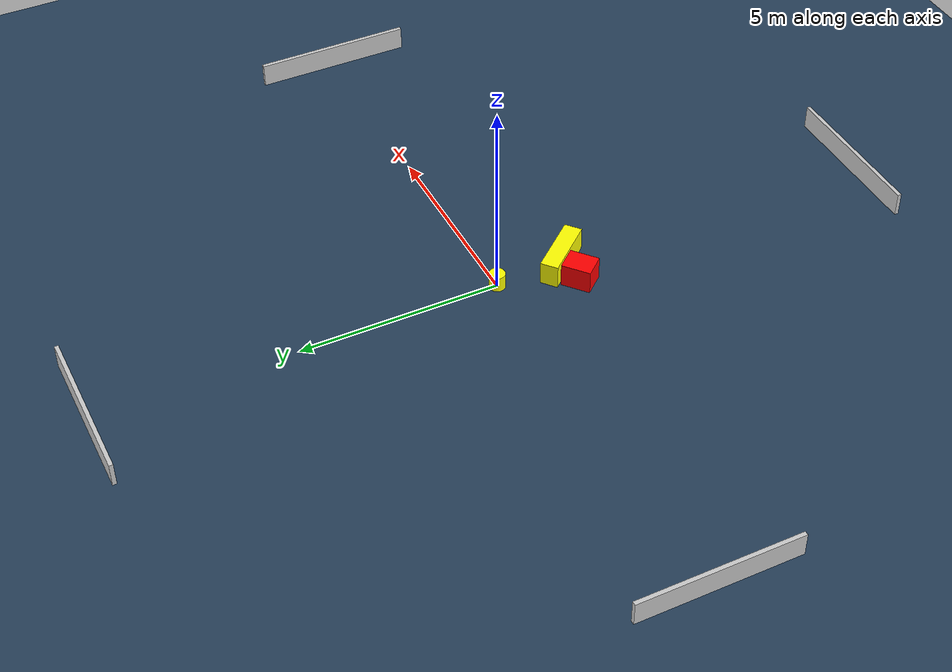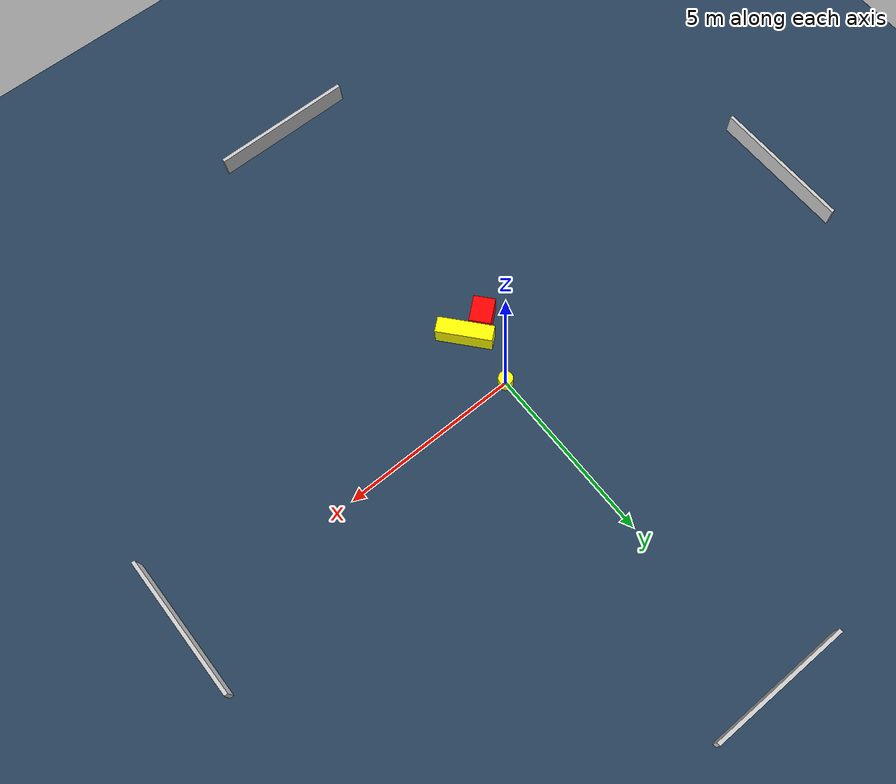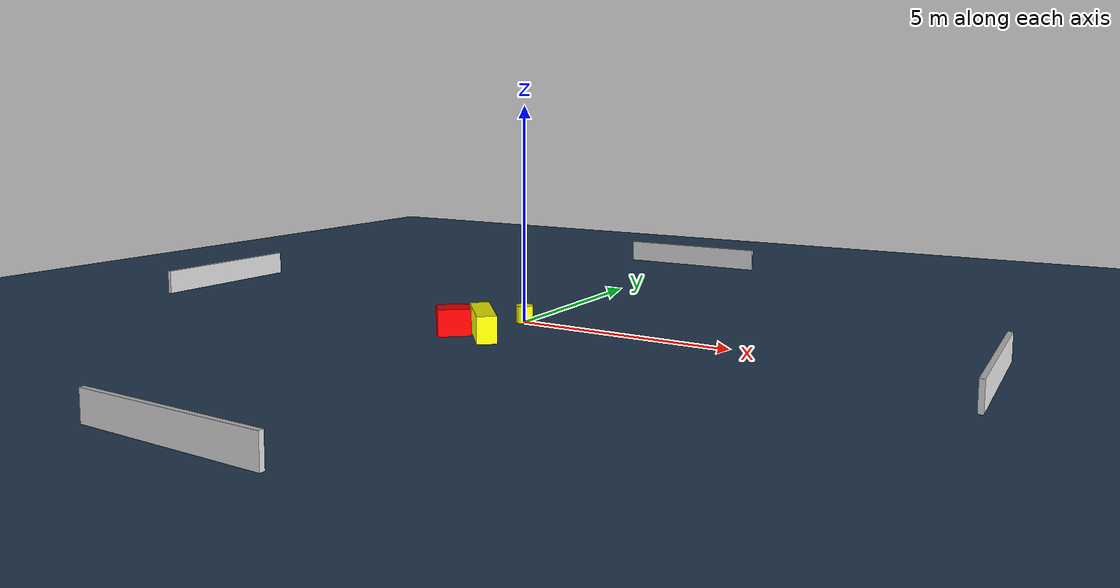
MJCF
<?xml version="1.0" ?>
<mujoco model="generated_environment">
  <option timestep="0.01" integrator="RK4" cone="elliptic"/>
  <default>
    <geom density="1"/>
  </default>
  <asset>
    <texture builtin="gradient" height="3072" name="skybox" rgb1="0.3 0.5 0.7" rgb2="0 0 0" type="skybox" width="512"/>
    <texture builtin="checker" height="300" name="groundplane" rgb1="0.2 0.3 0.4" rgb2="0.1 0.2 0.3" type="2d" width="300"/>
    <material name="groundplane" reflectance="0.2" texrepeat="5 5" texture="groundplane"/>
  </asset>
  <worldbody>
    <light dir="0 0 -1" directional="true" pos="0 0 1.5"/>
    <geom condim="3" friction="0.5 0.005 0.001" material="groundplane" name="floor" pos="0 0 0" size="0 0 0.05" type="plane"/>
    <body name="walls">
      <geom name="wall_1" condim="4" pos="-10.0 0.0 0.3" rgba="0.800000011920929 0.800000011920929 0.800000011920929 1.0" size="0.05 2.0 0.3" type="box"/>
      <geom name="wall_2" condim="4" pos="10.0 0.0 0.3" rgba="0.800000011920929 0.800000011920929 0.800000011920929 1.0" size="0.05 2.0 0.3" type="box"/>
      <geom name="wall_3" condim="4" pos="0.0 -10.0 0.3" rgba="0.800000011920929 0.800000011920929 0.800000011920929 1.0" size="2.0 0.05 0.3" type="box"/>
      <geom name="wall_4" condim="4" pos="0.0 10.0 0.3" rgba="0.800000011920929 0.800000011920929 0.800000011920929 1.0" size="2.0 0.05 0.3" type="box"/>
    </body>
    <body name="robot">
      <joint name="joint_x" type="slide" pos="0 0 0" axis="1 0 0"/>
      <joint name="joint_y" type="slide" pos="0 0 0" axis="0 1 0"/>
      <geom name="robot" type="cylinder" pos="0.0 0.0 0.2" size="0.2 0.2 0.0" mass="5.0" friction="1.0 0.005 0.0001" condim="4" rgba="1.0 1.0 0.0 1.0"/>
    </body>
    <body name="obstacle_1_movable">
      <geom name="obstacle_1_movable" condim="4" pos="-0.0068453608967196915 -1.6957680247220257 0.3" euler="0 0 220.2831913122897" friction="0.0 0.005 0.001" rgba="1.0 1.0 0.0 1.0" size="0.21991975286497603 0.7686665045623504 0.3" type="box" mass="0.1"/>
      <joint type="free"/>
    </body>
    <body name="obstacle_2_static">
      <geom name="obstacle_2_static" condim="4" pos="-0.7054605057255753 -1.8321640841839766 0.3" euler="0 0 40.46210635276009" friction="0.0 0.005 0.001" rgba="1.0 0.0 0.0 1.0" size="0.3655330669680887 0.2981622514927057 0.3" type="box"/>
    </body>
  </worldbody>
  <actuator>
    <motor name="actuator_x" joint="joint_x" gear="1" ctrlrange="-1 1"/>
    <motor name="actuator_y" joint="joint_y" gear="1" ctrlrange="-1 1"/>
  </actuator>
</mujoco>
